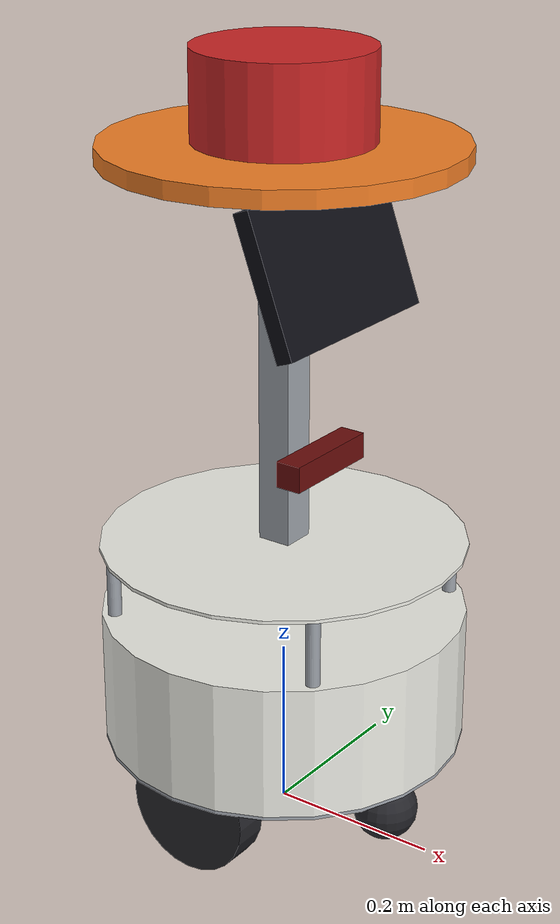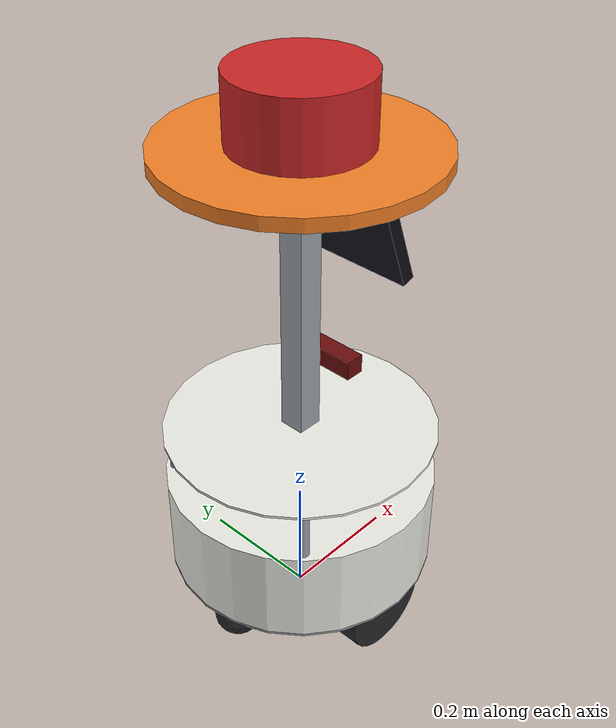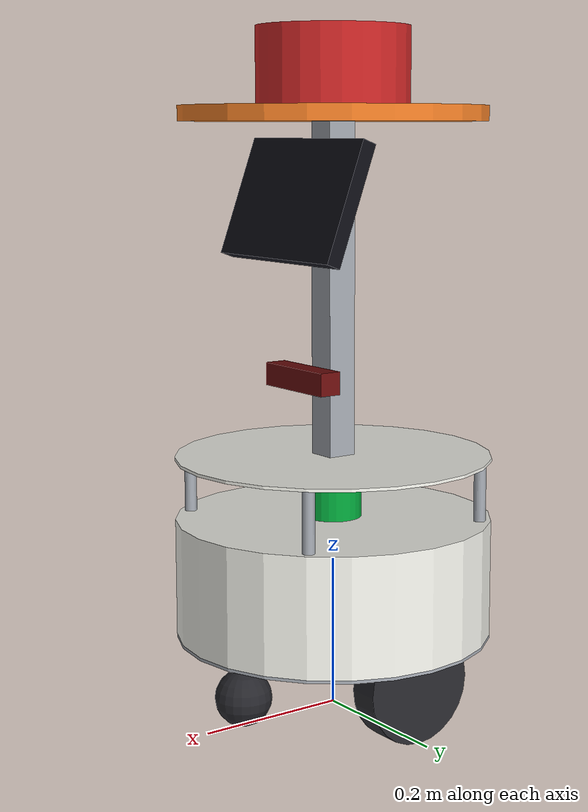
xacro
<?xml version="1.0"?>
<robot name="zippy" xmlns:xacro="http://ros.org/wiki/xacro">

  <xacro:include filename="$(find zippy_description)/urdf/zippy_properties.urdf.xacro"/>
  <xacro:include filename="$(find linorobot2_description)/urdf/sensors/plugins.urdf.xacro"/>
  <xacro:include filename="$(find linorobot2_description)/urdf/sensors/imu.urdf.xacro"/>
  <xacro:include filename="$(find linorobot2_description)/urdf/sensors/laser.urdf.xacro"/>
  <xacro:include filename="$(find linorobot2_description)/urdf/sensors/depth_sensor.urdf.xacro"/>

  <!-- ===================== colours ===================== -->
  <material name="zippy_shell"><color rgba="0.93 0.93 0.90 1.0"/></material>
  <material name="zippy_metal"><color rgba="0.62 0.64 0.67 1.0"/></material>
  <material name="zippy_dark"><color rgba="0.15 0.15 0.17 1.0"/></material>
  <material name="zippy_orange"><color rgba="0.95 0.50 0.15 1.0"/></material>
  <material name="zippy_battery"><color rgba="0.20 0.45 0.85 1.0"/></material>
  <material name="zippy_screen"><color rgba="0.05 0.05 0.08 1.0"/></material>
  <material name="zippy_load"><color rgba="0.80 0.15 0.15 1.0"/></material>

  <!-- ===================== inertia helpers ===================== -->
  <xacro:macro name="cyl_inertia" params="m r h">
    <inertia ixx="${m*(3*r*r + h*h)/12}" ixy="0" ixz="0"
             iyy="${m*(3*r*r + h*h)/12}" iyz="0" izz="${m*r*r/2}"/>
  </xacro:macro>
  <xacro:macro name="box_inertia" params="m x y z">
    <inertia ixx="${m*(y*y + z*z)/12}" ixy="0" ixz="0"
             iyy="${m*(x*x + z*z)/12}" iyz="0" izz="${m*(x*x + y*y)/12}"/>
  </xacro:macro>

  <!-- heights used below, worked out once -->
  <xacro:property name="base_z"   value="${plate_bottom_z + plate_thick/2}"/>   <!-- base_link sits in the plate -->
  <xacro:property name="plate_top_z" value="${plate_bottom_z + plate_thick}"/>
  <xacro:property name="column_bottom_z" value="${deck_bottom_z + plate_thick}"/>
  <xacro:property name="tray_bottom_z"   value="${tray_top_z - tray_thick}"/>
  <xacro:property name="column_len" value="${tray_bottom_z - column_bottom_z}"/>
  <xacro:property name="battery_h" value="0.150"/>

  <!-- ===================== base - floor plate ===================== -->
  <link name="base_footprint"/>

  <link name="base_link">
    <visual>
      <geometry><cylinder radius="${body_radius}" length="${plate_thick}"/></geometry>
      <material name="zippy_metal"/>
    </visual>
    <collision>
      <geometry><cylinder radius="${body_radius}" length="${plate_thick}"/></geometry>
    </collision>
    <inertial>
      <mass value="${plate_mass}"/>
      <xacro:cyl_inertia m="${plate_mass}" r="${body_radius}" h="${plate_thick}"/>
    </inertial>
  </link>

  <joint name="base_to_footprint" type="fixed">
    <parent link="base_footprint"/>
    <child link="base_link"/>
    <origin xyz="0 0 ${base_z}"/>
  </joint>

  <!-- ===================== lower shell + electronics ===================== -->
  <xacro:property name="shell_h" value="${shell_top_z - plate_top_z}"/>
  <link name="shell_link">
    <visual>
      <geometry><cylinder radius="${body_radius}" length="${shell_h}"/></geometry>
      <material name="zippy_shell"/>
    </visual>
    <collision>
      <geometry><cylinder radius="${body_radius}" length="${shell_h}"/></geometry>
    </collision>
    <inertial>
      <mass value="${shell_mass}"/>
      <xacro:cyl_inertia m="${shell_mass}" r="${body_radius}" h="${shell_h}"/>
    </inertial>
  </link>
  <joint name="shell_joint" type="fixed">
    <parent link="base_link"/>
    <child link="shell_link"/>
    <origin xyz="0 0 ${plate_top_z + shell_h/2 - base_z}"/>
  </joint>

  <!-- ===================== battery (inside the shell) ===================== -->
  <link name="battery_link">
    <visual>
      <geometry><box size="${battery_size}"/></geometry>
      <material name="zippy_battery"/>
    </visual>
    <inertial>
      <mass value="${battery_mass}"/>
      <xacro:box_inertia m="${battery_mass}" x="0.152" y="0.145" z="${battery_h}"/>
    </inertial>
  </link>
  <joint name="battery_joint" type="fixed">
    <parent link="base_link"/>
    <child link="battery_link"/>
    <origin xyz="0 0 ${plate_top_z + battery_h/2 - base_z}"/>
  </joint>

  <!-- ===================== drive wheels on springs ===================== -->
  <xacro:macro name="drive_wheel" params="side y inboard">
    <!-- swing-arm with the gear motor - slides up and down on the spring -->
    <link name="${side}_drive_link">
      <visual>
        <origin xyz="0 ${inboard} 0" rpy="${pi/2} 0 0"/>
        <geometry><cylinder radius="0.0185" length="0.10"/></geometry>
        <material name="zippy_dark"/>
      </visual>
      <inertial>
        <mass value="${motor_mass}"/>
        <xacro:box_inertia m="${motor_mass}" x="0.05" y="0.12" z="0.05"/>
      </inertial>
    </link>
    <joint name="${side}_suspension_joint" type="prismatic">
      <parent link="base_link"/>
      <child link="${side}_drive_link"/>
      <origin xyz="0 ${y} ${wheel_radius - base_z}"/>
      <axis xyz="0 0 1"/>
      <limit lower="${-spring_down}" upper="${spring_up}" effort="1000" velocity="10"/>
      <dynamics damping="${spring_damping}"/>
    </joint>
    <gazebo reference="${side}_suspension_joint">
      <springStiffness>${spring_k}</springStiffness>
      <springReference>${-spring_preload / spring_k}</springReference>
    </gazebo>

    <link name="${side}_wheel_link">
      <visual>
        <origin rpy="${pi/2} 0 0"/>
        <geometry><cylinder radius="${wheel_radius}" length="${wheel_width}"/></geometry>
        <material name="zippy_dark"/>
      </visual>
      <collision>
        <!-- a sphere touches the floor at one point, under the middle of the tyre, so Gazebo
             turns Zippy exactly as much as the wheel count says, on the spot and in curves -->
        <geometry><sphere radius="${wheel_radius}"/></geometry>
      </collision>
      <inertial>
        <origin rpy="${pi/2} 0 0"/>
        <mass value="${wheel_mass}"/>
        <xacro:cyl_inertia m="${wheel_mass}" r="${wheel_radius}" h="${wheel_width}"/>
      </inertial>
    </link>
    <joint name="${side}_wheel_joint" type="continuous">
      <parent link="${side}_drive_link"/>
      <child link="${side}_wheel_link"/>
      <axis xyz="0 1 0"/>
      <limit effort="${wheel_torque}" velocity="${wheel_max_speed}"/>
    </joint>
    <gazebo reference="${side}_wheel_link">
      <mu1>${wheel_mu}</mu1>
      <mu2>${wheel_mu}</mu2>
    </gazebo>
  </xacro:macro>

  <xacro:drive_wheel side="left"  y="${wheel_y}"  inboard="-0.065"/>
  <xacro:drive_wheel side="right" y="${-wheel_y}" inboard="0.065"/>

  <!-- ===================== casters (rigid, low friction like a swivel wheel) ===================== -->
  <xacro:macro name="caster" params="side x">
    <link name="${side}_caster_link">
      <visual>
        <geometry><sphere radius="${caster_radius}"/></geometry>
        <material name="zippy_dark"/>
      </visual>
      <collision>
        <geometry><sphere radius="${caster_radius}"/></geometry>
      </collision>
      <inertial>
        <mass value="${caster_mass}"/>
        <inertia ixx="${0.4*caster_mass*caster_radius*caster_radius}" ixy="0" ixz="0"
                 iyy="${0.4*caster_mass*caster_radius*caster_radius}" iyz="0"
                 izz="${0.4*caster_mass*caster_radius*caster_radius}"/>
      </inertial>
    </link>
    <joint name="${side}_caster_joint" type="fixed">
      <parent link="base_link"/>
      <child link="${side}_caster_link"/>
      <origin xyz="${x} 0 ${caster_radius - base_z}"/>
    </joint>
    <gazebo reference="${side}_caster_link">
      <mu1>0.01</mu1>
      <mu2>0.01</mu2>
    </gazebo>
  </xacro:macro>

  <xacro:caster side="front" x="${caster_x}"/>
  <xacro:caster side="rear"  x="${-caster_x}"/>

  <!-- ===================== LiDAR, in the slot ===================== -->
  <xacro:laser update_rate="10" ray_count="360" min_angle="-3.1416" max_angle="3.1416"
               min_range="${lidar_min_range}" max_range="12.0" frame_id="laser" topic_name="scan">
    <origin xyz="0 0 ${lidar_z - base_z}" rpy="0 0 0"/>
  </xacro:laser>

  <!-- ===================== top deck with its 4 slot posts ===================== -->
  <xacro:macro name="post" params="a">
    <visual>
      <origin xyz="${post_ring*cos(a)} ${post_ring*sin(a)} ${-(deck_bottom_z - shell_top_z)/2 - plate_thick/2}"/>
      <geometry><cylinder radius="${post_radius}" length="${deck_bottom_z - shell_top_z}"/></geometry>
      <material name="zippy_metal"/>
    </visual>
  </xacro:macro>
  <link name="deck_link">
    <visual>
      <geometry><cylinder radius="${body_radius}" length="${plate_thick}"/></geometry>
      <material name="zippy_shell"/>
    </visual>
    <xacro:post a="${pi/4}"/>
    <xacro:post a="${3*pi/4}"/>
    <xacro:post a="${-pi/4}"/>
    <xacro:post a="${-3*pi/4}"/>
    <collision>
      <geometry><cylinder radius="${body_radius}" length="${plate_thick}"/></geometry>
    </collision>
    <inertial>
      <mass value="${deck_mass}"/>
      <xacro:cyl_inertia m="${deck_mass}" r="${body_radius}" h="${plate_thick}"/>
    </inertial>
  </link>
  <joint name="deck_joint" type="fixed">
    <parent link="base_link"/>
    <child link="deck_link"/>
    <origin xyz="0 0 ${deck_bottom_z + plate_thick/2 - base_z}"/>
  </joint>

  <!-- ===================== column ===================== -->
  <link name="column_link">
    <visual>
      <geometry><box size="${column_side} ${column_side} ${column_len}"/></geometry>
      <material name="zippy_metal"/>
    </visual>
    <collision>
      <geometry><box size="${column_side} ${column_side} ${column_len}"/></geometry>
    </collision>
    <inertial>
      <mass value="${column_mass}"/>
      <xacro:box_inertia m="${column_mass}" x="${column_side}" y="${column_side}" z="${column_len}"/>
    </inertial>
  </link>
  <joint name="column_joint" type="fixed">
    <parent link="base_link"/>
    <child link="column_link"/>
    <origin xyz="0 0 ${column_bottom_z + column_len/2 - base_z}"/>
  </joint>

  <!-- ===================== tray, level with the counter ===================== -->
  <link name="tray_link">
    <visual>
      <geometry><cylinder radius="${tray_radius}" length="${tray_thick}"/></geometry>
      <material name="zippy_orange"/>
    </visual>
    <collision>
      <geometry><cylinder radius="${tray_radius}" length="${tray_thick}"/></geometry>
    </collision>
    <inertial>
      <mass value="${tray_mass}"/>
      <xacro:cyl_inertia m="${tray_mass}" r="${tray_radius}" h="${tray_thick}"/>
    </inertial>
  </link>
  <joint name="tray_joint" type="fixed">
    <parent link="base_link"/>
    <child link="tray_link"/>
    <origin xyz="0 0 ${tray_top_z - tray_thick/2 - base_z}"/>
  </joint>

  <!-- ===================== test load on the tray (fixed in place) ===================== -->
  <link name="payload_link">
    <visual>
      <geometry><cylinder radius="0.10" length="0.10"/></geometry>
      <material name="zippy_load"/>
    </visual>
    <inertial>
      <mass value="${payload_mass}"/>
      <xacro:cyl_inertia m="${payload_mass}" r="0.10" h="0.10"/>
    </inertial>
  </link>
  <joint name="payload_joint" type="fixed">
    <parent link="tray_link"/>
    <child link="payload_link"/>
    <origin xyz="0 0 ${tray_thick/2 + 0.05}"/>
  </joint>

  <!-- ===================== touchscreen on the front of the column ===================== -->
  <link name="screen_link">
    <visual>
      <geometry><box size="${screen_size}"/></geometry>
      <material name="zippy_screen"/>
    </visual>
    <inertial>
      <mass value="${screen_mass}"/>
      <xacro:box_inertia m="${screen_mass}" x="0.02" y="0.24" z="0.16"/>
    </inertial>
  </link>
  <joint name="screen_joint" type="fixed">
    <parent link="base_link"/>
    <child link="screen_link"/>
    <origin xyz="0.06 0 ${screen_z - base_z}" rpy="0 ${-screen_tilt} 0"/>
  </joint>

  <!-- ===================== sensors from linorobot2 ===================== -->
  <xacro:imu/>
  <xacro:depth_sensor>
    <origin xyz="0.05 0 ${camera_z - base_z}" rpy="0 0 0"/>
  </xacro:depth_sensor>

  <!-- ===================== motors - Gazebo's differential drive ===================== -->
  <gazebo>
    <plugin filename="gz-sim-diff-drive-system" name="gz::sim::systems::DiffDrive">
      <topic>cmd_vel</topic>
      <child_frame_id>base_footprint</child_frame_id>
      <odom_topic>odom/unfiltered</odom_topic>
      <left_joint>left_wheel_joint</left_joint>
      <right_joint>right_wheel_joint</right_joint>
      <wheel_separation>${wheel_grip_track}</wheel_separation>
      <wheel_radius>${wheel_radius}</wheel_radius>
      <odom_publish_frequency>50</odom_publish_frequency>
      <max_linear_velocity>${max_speed}</max_linear_velocity>
      <min_linear_velocity>${-max_speed}</min_linear_velocity>
      <max_angular_velocity>${max_turn}</max_angular_velocity>
      <min_angular_velocity>${-max_turn}</min_angular_velocity>
      <max_linear_acceleration>${max_accel}</max_linear_acceleration>
      <min_linear_acceleration>${-max_accel}</min_linear_acceleration>
      <max_angular_acceleration>2.0</max_angular_acceleration>
      <min_angular_acceleration>-2.0</min_angular_acceleration>
    </plugin>
  </gazebo>
  <gazebo>
    <!-- no joint list - publishes all four moving joints, wheels and springs -->
    <plugin filename="gz-sim-joint-state-publisher-system" name="gz::sim::systems::JointStatePublisher">
      <topic>joint_states</topic>
      <update_rate>50</update_rate>
    </plugin>
  </gazebo>
</robot>

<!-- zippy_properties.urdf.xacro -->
<robot xmlns:xacro="http://ros.org/wiki/xacro">

  <!-- ===== Footprint - a round robot, 42 cm across, so it turns on the spot ===== -->
  <xacro:property name="body_radius"     value="0.21"/>   <!-- 42 cm - 17 cm spare each side in a 76 cm door -->

  <!-- ===== Floor plate (laser-cut 4 mm aluminium) ===== -->
  <xacro:property name="plate_bottom_z"  value="0.100"/>  <!-- = mounting height of the 75 mm casters -->
  <xacro:property name="plate_thick"     value="0.004"/>
  <xacro:property name="plate_mass"      value="1.5"/>

  <!-- ===== Lower shell - wall of the base + all electronics inside it ===== -->
  <xacro:property name="shell_top_z"     value="0.260"/>
  <xacro:property name="shell_mass"      value="2.5"/>    <!-- shell 1.0 + Jetson, driver, ESP32, DC-DC, fuses, wires 1.5 -->

  <!-- ===== Battery - 24 V LiFePO4, ~600 Wh, standing on the plate ===== -->
  <xacro:property name="battery_size"    value="0.152 0.145 0.150"/>
  <xacro:property name="battery_mass"    value="5.3"/>

  <!-- ===== Drive - two 150 mm wheels on sprung swing-arms (like a Roomba / Kobuki) ===== -->
  <xacro:property name="wheel_radius"    value="0.075"/>
  <xacro:property name="wheel_width"     value="0.040"/>
  <xacro:property name="wheel_y"         value="0.165"/>  <!-- wheel separation 0.33 m -->
  <xacro:property name="wheel_grip_track" value="0.33"/>  <!-- where the tyres actually grip, measured 5 Oct 2026 - Zippy turned 195 deg but counted 219 with 0.33 -->
  <xacro:property name="wheel_mass"      value="0.40"/>
  <xacro:property name="wheel_mu"        value="0.7"/>    <!-- rubber on tile/marble, dry -->
  <xacro:property name="motor_mass"      value="0.90"/>   <!-- gear motor + swing-arm bracket, moves with the spring -->
  <xacro:property name="wheel_torque"    value="3.0"/>    <!-- most the motor may push, N m (about 30 kg cm) -->
  <xacro:property name="wheel_max_speed" value="10.5"/>   <!-- rad/s = 100 rpm = 0.79 m/s -->

  <!-- Suspension spring on each drive wheel -->
  <xacro:property name="spring_k"        value="8000"/>   <!-- 8 N per mm - stiff sideways (6 Oct 2026); was 3 for sills -->
  <xacro:property name="spring_preload"  value="55"/>     <!-- N pressing each wheel down at ride height -->
  <xacro:property name="spring_damping"  value="120"/>
  <xacro:property name="spring_down"     value="0.025"/>  <!-- travel below ride height -->
  <xacro:property name="spring_up"       value="0.015"/>  <!-- travel above ride height -->

  <!-- ===== Casters - two 75 mm swivel casters, front and back, rigid ===== -->
  <xacro:property name="caster_radius"   value="0.0375"/>
  <xacro:property name="caster_x"        value="0.145"/>
  <xacro:property name="caster_mass"     value="0.25"/>

  <!-- ===== LiDAR in a 360 degree slot between the shell and the top deck ===== -->
  <xacro:property name="lidar_z"         value="0.310"/>  <!-- height of the laser beam -->
  <xacro:property name="lidar_min_range" value="0.25"/>   <!-- ignores the 4 slot posts at 19.5 cm -->
  <xacro:property name="deck_bottom_z"   value="0.340"/>
  <xacro:property name="deck_mass"       value="1.0"/>    <!-- top deck + 4 posts -->
  <xacro:property name="post_radius"     value="0.008"/>
  <xacro:property name="post_ring"       value="0.195"/>

  <!-- ===== Column (40 x 40 mm aluminium extrusion), tray, screen ===== -->
  <xacro:property name="column_side"     value="0.04"/>
  <xacro:property name="column_mass"     value="0.75"/>
  <xacro:property name="tray_top_z"      value="0.80"/>   <!-- Zippy is at most 80 cm tall (Aayush, 5 Oct 2026) -->
  <xacro:property name="tray_radius"     value="0.20"/>
  <xacro:property name="tray_thick"      value="0.02"/>
  <xacro:property name="tray_mass"       value="1.2"/>
  <xacro:property name="screen_size"     value="0.02 0.24 0.16"/>  <!-- 10 inch touchscreen -->
  <xacro:property name="screen_mass"     value="0.8"/>
  <xacro:property name="screen_z"        value="0.68"/>
  <xacro:property name="screen_tilt"     value="0.35"/>   <!-- 20 degrees, facing up towards a standing person -->
  <xacro:property name="camera_z"        value="0.45"/>

  <!-- ===== Test load on the tray - a 10 cm tall pot, 20 cm across ===== -->
  <xacro:property name="payload_mass"    value="8.0"/>    <!-- 8 kg = the Phase 0 design load. 0.001 = empty tray -->

  <!-- ===== Speed limits, as the motor driver will enforce them ===== -->
  <xacro:property name="max_speed"       value="0.5"/>
  <xacro:property name="max_turn"        value="1.5"/>    <!-- rad/s -->
  <xacro:property name="max_accel"       value="0.8"/>    <!-- m/s2 - hardest start or stop. Loaded Zippy starts to rock at ~1.2 and tips at ~2.7 -->
</robot>

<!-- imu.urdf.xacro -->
<robot xmlns:xacro="http://ros.org/wiki/xacro">
  <xacro:macro name="imu">
    <link name="imu_link"/>

    <joint name="imu_to_base_link" type="fixed">
      <parent link="base_link"/>
      <child link="imu_link"/>
      <origin xyz="0 0 0" rpy="0 0 0"/>
    </joint>

    <gazebo>
      <plugin filename="gz-sim-imu-system" name="gz::sim::systems::Imu">
      </plugin>
    </gazebo>

    <gazebo reference="imu_link">
      <sensor name="imu_sensor" type="imu">
        <topic>$(arg namespace)/imu/data</topic>
        <update_rate>50</update_rate>
        <always_on>true</always_on>
        <visualize>true</visualize>
      </sensor>
    </gazebo>
  </xacro:macro>
</robot>

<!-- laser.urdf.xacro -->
<robot xmlns:xacro="http://ros.org/wiki/xacro">
  <xacro:property name="M_PI" value="3.1415926535897931" />
  <xacro:macro name="laser" params="*origin update_rate ray_count min_angle max_angle min_range max_range frame_id topic_name">
    <link name="${frame_id}">
      <visual>
        <origin xyz="0 0 -0.025" rpy="0 0 0"/>
        <geometry>
          <cylinder radius="0.0375" length="0.05"/>
        </geometry>
        <material name="green">
            <color rgba="0.003 0.639 0.223 1.0"/>
        </material>
      </visual>
      <collision>
        <origin xyz="0 0 -0.025" rpy="0 0 0"/>
        <geometry>
          <cylinder radius="0.0375" length="0.05"/>
        </geometry>
      </collision>

      <inertial>
        <origin xyz="0 0 0" rpy="0 0 0"/>
        <mass value="0.1"/>
        <inertia ixx="${(2/5) * 0.1 * (0.0375 * 0.0375)}" ixy="0" ixz="0"
                 iyy="${(2/5) * 0.1 * (0.0375 * 0.0375)}" iyz="0"
                 izz="${(2/5) * 0.1 * (0.0375 * 0.0375)}" />
      </inertial>
    </link>

    <gazebo reference="${frame_id}">
      <visual>
        <material>
          <ambient>0.003 0.639 0.223 1.0</ambient>
          <diffuse>0.003 0.639 0.223 1.0</diffuse>
          <specular>0.003 0.639 0.223 1.0</specular>
          <emissive>0.0 0.0 0.0 0.0</emissive>
        </material>
      </visual>
    </gazebo>

    <joint name="${frame_id}_to_base_link" type="fixed">
      <parent link="base_link"/>
      <child link="${frame_id}"/>
      <xacro:insert_block name="origin" />
    </joint>

    <gazebo reference="${frame_id}">
      <sensor name="gpu_lidar" type="gpu_lidar">
        <topic>$(arg namespace)${topic_name}</topic>
        <gz_frame_id>${frame_id}</gz_frame_id>
        <update_rate>${update_rate}</update_rate>
        <always_on>true</always_on>
        <visualize>true</visualize>
        <lidar>
          <scan>
            <horizontal>
              <samples>${ray_count}</samples>
              <resolution>1</resolution>
              <min_angle>${min_angle}</min_angle>
              <max_angle>${max_angle}</max_angle>
            </horizontal>
            <vertical>
              <samples>1</samples>
              <resolution>1</resolution>
              <min_angle>0.0</min_angle>
              <max_angle>0.0</max_angle>
            </vertical>
          </scan>
          <range>
            <min>${min_range}</min>
            <max>${max_range}</max>
            <resolution>0.01</resolution>
          </range>
        </lidar>
      </sensor>
    </gazebo>
  </xacro:macro>
</robot>

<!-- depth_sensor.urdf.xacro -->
<robot xmlns:xacro="http://ros.org/wiki/xacro">
  <xacro:property name="M_PI" value="3.1415926535897931" />
  <xacro:macro name="depth_sensor" params="*origin">
    <link name="camera_link">
      <visual>
        <origin xyz="0 0 0" rpy="0 0 0"/>
        <geometry>
          <box size="0.030 0.124 0.030"/>
        </geometry>
        <material name="red">
          <color rgba="0.416 0.051 0.047 1.0"/>
        </material>
      </visual>

      <collision>
        <origin xyz="0 0 0" rpy="0 0 0"/>
        <geometry>
          <box size="0.030 0.124 0.030"/>
        </geometry>
      </collision>

      <inertial>
        <origin xyz="0 0 0" rpy="0 0 0"/>
        <mass value="0.135"/>
        <inertia ixx="${(1/12) * 0.135 * ((0.124  * 0.124)  + (0.030 * 0.030))}" ixy="0.0" ixz="0.0"
                 iyy="${(1/12) * 0.135 * ((0.030 * 0.030) + (0.030 * 0.030))}" iyz="0.0"
                 izz="${(1/12) * 0.135 * ((0.030 * 0.030) + (0.124  * 0.124))}"/>
      </inertial>
    </link>

    <gazebo reference="camera_link">
      <visual>
        <material>
          <ambient>0.416 0.051 0.047 1.0</ambient>
          <diffuse>0.416 0.051 0.047 1.0</diffuse>
          <specular>0.416 0.051 0.047 1.0</specular>
          <emissive>0.416 0.051 0.047 1.0</emissive>
        </material>
      </visual>
    </gazebo>rgb(213,28,40)

    <joint name="camera_to_base_link" type="fixed">
      <parent link="base_link"/>
      <child link="camera_link"/>
      <xacro:insert_block name="origin" />
    </joint>

    <link name="camera_depth_link"/>
    <joint name="camera_depth_joint" type="fixed">
      <origin xyz="0 0 0" rpy="0 0 0"/>
      <parent link="camera_link"/>
      <child link="camera_depth_link"/>
    </joint>

    <gazebo reference="camera_link">
      <sensor name="camera" type="rgbd_camera">
        <topic>$(arg namespace)/camera</topic>
        <update_rate>30.0</update_rate>
        <always_on>true</always_on>
        <visualize>true</visualize>
        <camera>
          <optical_frame_id>camera_depth_link</optical_frame_id>
          <horizontal_fov>1.50098</horizontal_fov>
          <image>
            <width>640</width>
            <height>480</height>
            <format>R8G8B8</format>
          </image>
          <clip>
            <near>0.3</near>
            <far>100</far>
          </clip>
        </camera>
      </sensor>
    </gazebo>
  </xacro:macro>
</robot>
